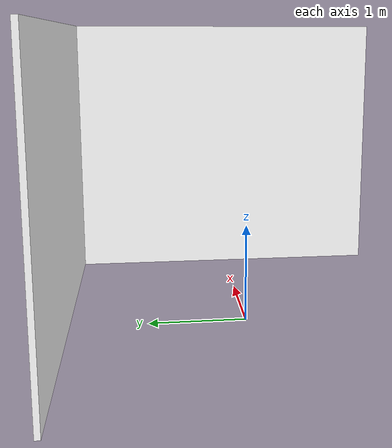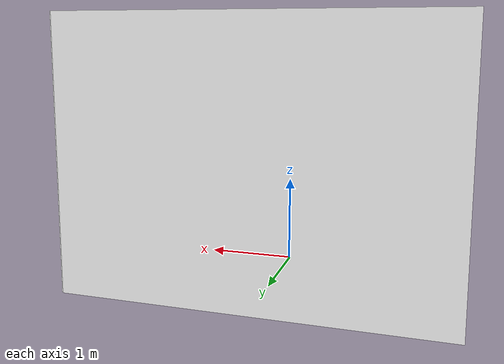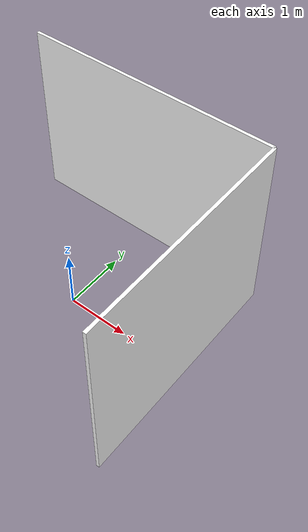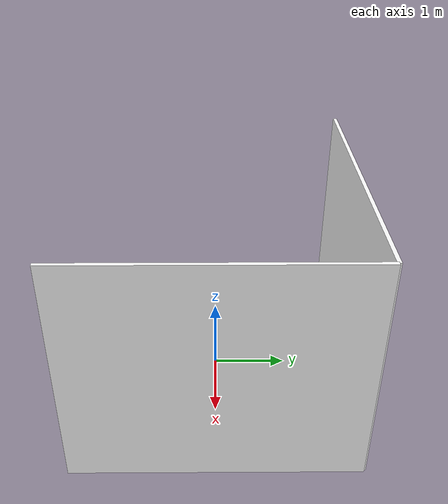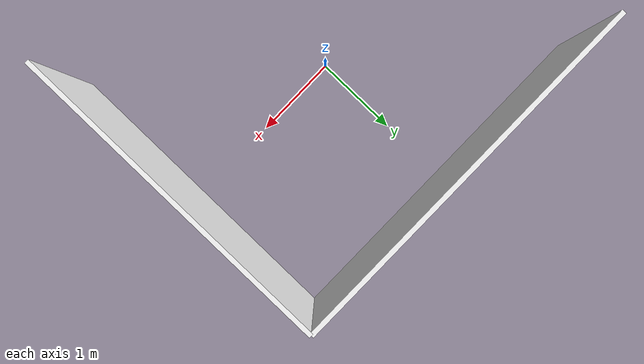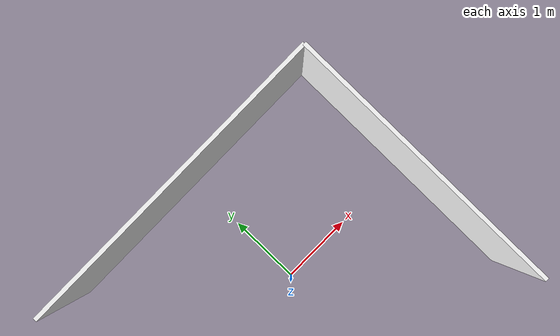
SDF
<?xml version="1.0" ?>
<sdf version="1.6">
  <model name="walls">
    <static>true</static>

    <link name="base_link" />

    <link name="tv_wall">
      <visual name="visual">
        <pose>2.0701 0 1.5 0 0 0</pose>
        <geometry>
          <box>
            <size> 0.05 3.6322 3 </size>
          </box>
        </geometry>
        <material>
            <ambient>0.0 0.0 0.0 1.0</ambient>
            <diffuse>1.0 1.0 1.0 1.0</diffuse>
        </material>
      </visual>

      <collision name="collision">
        <pose>2.0701 0 1.5 0 0 0</pose>
        <geometry>
          <box>
            <size> 0.05 3.6322 3 </size>
          </box>
        </geometry>
      </collision>

    </link>
    <link name="side_wall">
      <visual name="visual">
        <pose>0 1.8161 1.5 0 0 0</pose>
        <geometry>
          <box>
            <size> 4.1402 0.05 3 </size>
          </box>
        </geometry>
        <material>
            <ambient>0.0 0.0 0.0 1.0</ambient>
            <diffuse>1.0 1.0 1.0 1.0</diffuse>
        </material>
      </visual>

      <collision name="collision">
        <pose>0 1.8161 1.5 0 0 0</pose>
        <geometry>
          <box>
            <size> 4.1402 0.05 3 </size>
          </box>
        </geometry>
      </collision>

    </link>

    <joint name="base_to_tv_wall" type="fixed">
      <parent>base_link</parent>
      <child>tv_wall</child>
    </joint>

    <joint name="base_to_side_wall" type="fixed">
      <parent>base_link</parent>
      <child>side_wall</child>
    </joint>

  </model>
</sdf>
